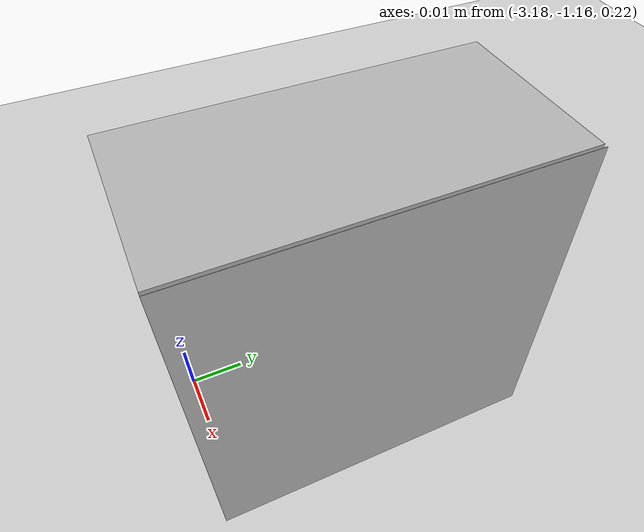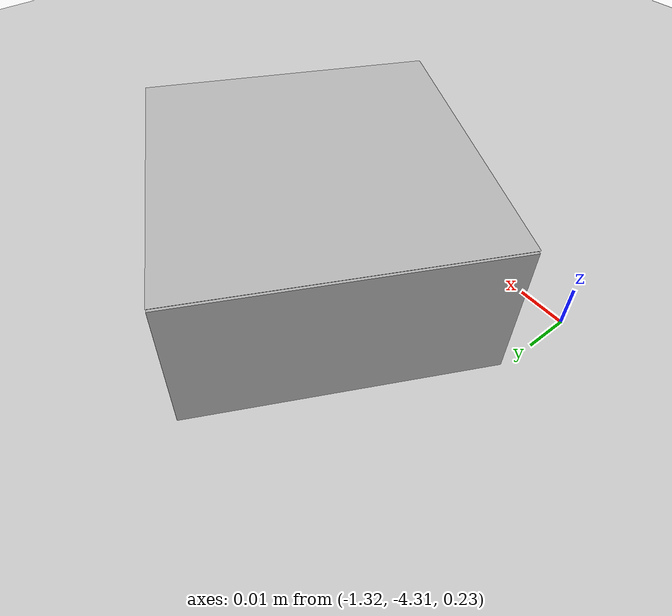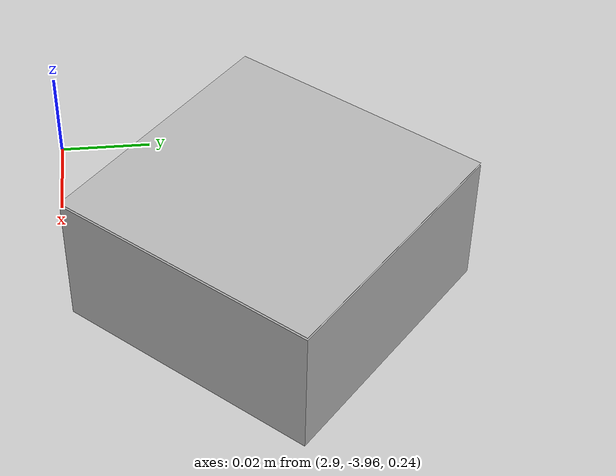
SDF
<sdf version='1.9'>
  <world name='empty'>
    <physics name='1ms' type='ignored'>
      <max_step_size>0.001</max_step_size>
      <real_time_factor>1</real_time_factor>
      <real_time_update_rate>1000</real_time_update_rate>
    </physics>
    <plugin name='gz::sim::systems::Physics' filename='ignition-gazebo-physics-system'/>
    <plugin name='gz::sim::systems::UserCommands' filename='ignition-gazebo-user-commands-system'/>
    <plugin name='gz::sim::systems::SceneBroadcaster' filename='ignition-gazebo-scene-broadcaster-system'/>
    <plugin name='gz::sim::systems::Contact' filename='ignition-gazebo-contact-system'/>
    <plugin name='gz::sim::systems::Sensors' filename='gz-sim-sensors-system'/>
    <spherical_coordinates>
      <surface_model>EARTH_WGS84</surface_model>
      <world_frame_orientation>ENU</world_frame_orientation>
      <latitude_deg>44.403373000000002</latitude_deg>
      <longitude_deg>8.9481067999999997</longitude_deg>
      <elevation>0</elevation>
      <heading_deg>0</heading_deg>
    </spherical_coordinates>
    <gravity>0 0 -9.8</gravity>
    <magnetic_field>6e-06 2.3e-05 -4.2e-05</magnetic_field>
    <atmosphere type='adiabatic'/>
    <scene>
      <ambient>0.4 0.4 0.4 1</ambient>
      <background>0.7 0.7 0.7 1</background>
      <shadows>true</shadows>
    </scene>
    <gravity>0 0 -9.8</gravity>
    <magnetic_field>6e-06 2.3e-05 -4.2e-05</magnetic_field>
    <atmosphere type='adiabatic'/>
    <scene>
      <ambient>0.4 0.4 0.4 1</ambient>
      <background>0.7 0.7 0.7 1</background>
      <shadows>true</shadows>
    </scene>
    <model name='ground_plane'>
      <static>true</static>
      <link name='link'>
        <collision name='collision'>
          <geometry>
            <plane>
              <normal>0 0 1</normal>
              <size>100 100</size>
            </plane>
          </geometry>
          <surface>
            <friction>
              <ode/>
            </friction>
            <bounce/>
            <contact/>
          </surface>
        </collision>
        <visual name='visual'>
          <geometry>
            <plane>
              <normal>0 0 1</normal>
              <size>100 100</size>
            </plane>
          </geometry>
          <material>
            <ambient>0.8 0.8 0.8 1</ambient>
            <diffuse>0.8 0.8 0.8 1</diffuse>
            <specular>0.8 0.8 0.8 1</specular>
          </material>
        </visual>
        <pose>0 0 0 0 -0 0</pose>
        <inertial>
          <pose>0 0 0 0 -0 0</pose>
          <mass>1</mass>
          <inertia>
            <ixx>1</ixx>
            <ixy>0</ixy>
            <ixz>0</ixz>
            <iyy>1</iyy>
            <iyz>0</iyz>
            <izz>1</izz>
          </inertia>
        </inertial>
        <enable_wind>false</enable_wind>
      </link>
      <pose>0 0 0 0 -0 0</pose>
      <self_collide>false</self_collide>
    </model>
    <include>
      <uri>file:///home/paolo/gazebo_models/aruco_box</uri>
      <name>aruco_box</name>
      <pose>2.94487 -3.9155 0.25 0 0 0.838263</pose>
    </include>
    <include>
      <uri>file:///home/paolo/gazebo_models/aruco_box</uri>
      <name>aruco_box_1</name>
      <pose>3.85955 0.054074 0.25 0 0 0.181237</pose>
    </include>
    <include>
      <uri>file:///home/paolo/gazebo_models/aruco_box</uri>
      <name>aruco_box_2</name>
      <pose>-0.298428 2.58848 0.249999 -0 0 0.138346</pose>
    </include>
    <include>
      <uri>file:///home/paolo/gazebo_models/aruco_box</uri>
      <name>aruco_box_3</name>
      <pose>-1.28067 -4.27479 0.25 0 0 1.11103</pose>
    </include>
    <include>
      <uri>file:///home/paolo/gazebo_models/aruco_box</uri>
      <name>aruco_box_4</name>
      <pose>-3.16518 -1.1328 0.249999 1.5708 -0 1.5708</pose>
    </include>
    <light name='sun' type='directional'>
      <pose>0 0 10 0 -0 0</pose>
      <cast_shadows>true</cast_shadows>
      <intensity>1</intensity>
      <direction>-0.5 0.1 -0.9</direction>
      <diffuse>0.8 0.8 0.8 1</diffuse>
      <specular>0.2 0.2 0.2 1</specular>
      <attenuation>
        <range>1000</range>
        <linear>0.01</linear>
        <constant>0.90000000000000002</constant>
        <quadratic>0.001</quadratic>
      </attenuation>
      <spot>
        <inner_angle>0</inner_angle>
        <outer_angle>0</outer_angle>
        <falloff>0</falloff>
      </spot>
    </light>
  </world>
</sdf>

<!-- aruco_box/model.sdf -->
<sdf version="1.6">
  <model name="aruco_box">
    <static>false</static>

    <link name="link">
      <inertial>
        <mass>0.05</mass>
        <inertia>
          <ixx>1e-5</ixx><iyy>1e-5</iyy><izz>1e-5</izz>
          <ixy>0</ixy><ixz>0</ixz><iyz>0</iyz>
        </inertia>
      </inertial>

      <collision name="box_col">
        <geometry>
          <box><size>0.06 0.06 0.03</size></box>
        </geometry>
      </collision>

      <visual name="box_vis">
        <geometry>
          <box><size>0.06 0.06 0.03</size></box>
        </geometry>
        <material>
          <ambient>0.7 0.7 0.7 1</ambient>
          <diffuse>0.7 0.7 0.7 1</diffuse>
        </material>
      </visual>

      <!-- Top marker plane -->
      <visual name="marker_plane">
        <!-- box half height = 0.015, lift slightly to avoid z-fighting -->
        <pose>0 0 0.0156 0 0 0</pose>
        <geometry>
          <plane>
            <normal>0 0 1</normal>
            <size>0.06 0.06</size>
          </plane>
        </geometry>
        <material>
          <script>
            <uri>model://aruco_box/materials/scripts</uri>
            <uri>model://aruco_box/materials/textures</uri>
            <name>ArucoBox/Marker</name>
          </script>
        </material>
      </visual>

    </link>
  </model>
</sdf>
